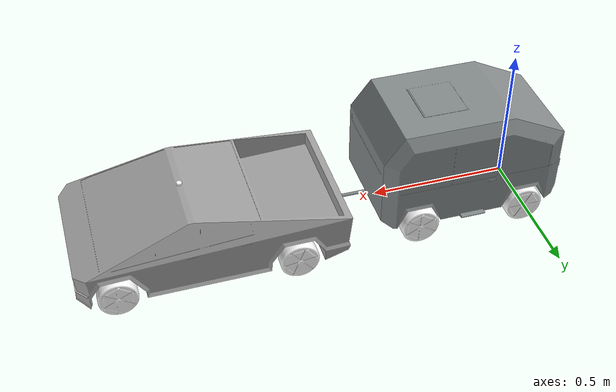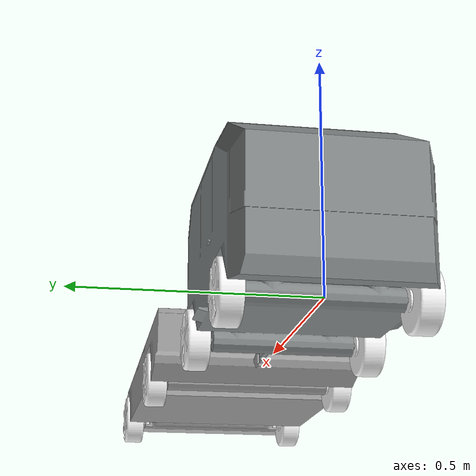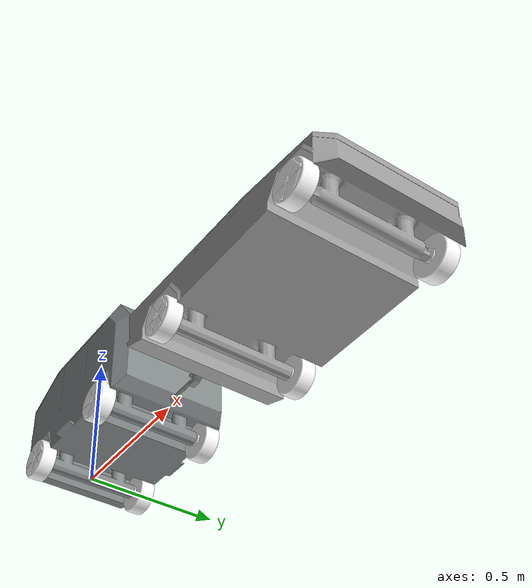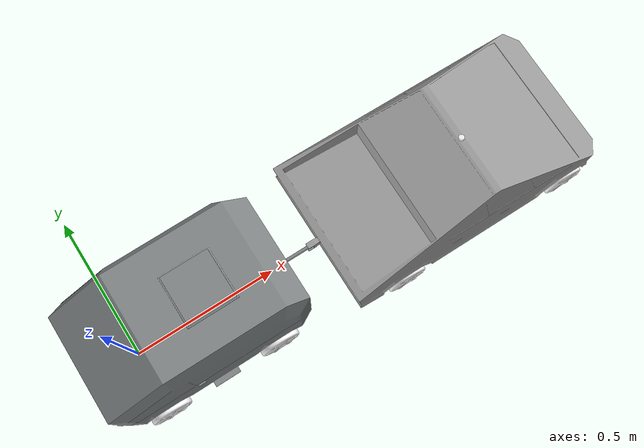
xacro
<?xml version="1.0"?>
<robot
  name="cyber_truck_trailer" xmlns:xacro="http://ros.org/wiki/xacro">
  <link
    name="trailer_base_link">
    <inertial>
      <origin
        xyz="0.208999667507989 -7.09811038529518E-07 0.193825536292477"
        rpy="0 0 0" />
      <mass
        value="71.153178542036" />
      <inertia
        ixx="16.9489177846989"
        ixy="-0.000204627218083857"
        ixz="-0.787115220796937"
        iyy="31.6626249749761"
        iyz="-0.000178248045006897"
        izz="33.8596103928731" />
    </inertial>
    <visual>
      <origin
        xyz="0 0 0"
        rpy="0 0 0" />
      <geometry>
        <mesh
          filename="package://cyber_truck_trailer/meshes/trailer_base_link.STL" />
      </geometry>
      <material
        name="">
        <color
          rgba="0.529411764705882 0.549019607843137 0.549019607843137 1" />
      </material>
    </visual>
    <collision>
      <origin
        xyz="0 0 0"
        rpy="0 0 0" />
      <geometry>
        <mesh
          filename="package://cyber_truck_trailer/meshes/trailer_base_link.STL" />
      </geometry>
    </collision>
  </link>
  <link
    name="trailer_rrw_link">
    <inertial>
      <origin
        xyz="3.83026943495679E-14 -1.91206432958546E-14 0.0153678361244729"
        rpy="0 0 0" />
      <mass
        value="0.72439498421396" />
      <inertia
        ixx="0.00100050040398938"
        ixy="-1.28274262656265E-20"
        ixz="1.01158453807695E-19"
        iyy="0.00100050040398938"
        iyz="-1.60071549886504E-20"
        izz="0.00166753377285241" />
    </inertial>
    <visual>
      <origin
        xyz="0 0 0"
        rpy="0 0 0" />
      <geometry>
        <mesh
          filename="package://cyber_truck_trailer/meshes/trailer_rrw_link.STL" />
      </geometry>
      <material
        name="">
        <color
          rgba="1 1 1 1" />
      </material>
    </visual>
    <collision>
      <origin
        xyz="0 0 0"
        rpy="0 0 0" />
      <geometry>
        <mesh
          filename="package://cyber_truck_trailer/meshes/trailer_rrw_link.STL" />
      </geometry>
    </collision>
  </link>
  <joint
    name="trailer_rrw_joint"
    type="continuous">
    <origin
      xyz="7.0283717805153E-05 -0.181945626461709 0.0021648066566907"
      rpy="1.5707963267949 0 0" />
    <parent
      link="trailer_base_link" />
    <child
      link="trailer_rrw_link" />
    <axis
      xyz="0 0 -1" />
  </joint>
  <link
    name="trailer_rlw_link">
    <inertial>
      <origin
        xyz="-2.22044604925031E-16 1.0796419257685E-17 -0.0153678361240795"
        rpy="0 0 0" />
      <mass
        value="0.724394984213959" />
      <inertia
        ixx="0.00100050040398938"
        ixy="1.41395509431171E-19"
        ixz="2.66450595702666E-18"
        iyy="0.00100050040398938"
        iyz="-6.73807415815898E-20"
        izz="0.00166753377285241" />
    </inertial>
    <visual>
      <origin
        xyz="0 0 0"
        rpy="0 0 0" />
      <geometry>
        <mesh
          filename="package://cyber_truck_trailer/meshes/trailer_rlw_link.STL" />
      </geometry>
      <material
        name="">
        <color
          rgba="1 1 1 1" />
      </material>
    </visual>
    <collision>
      <origin
        xyz="0 0 0"
        rpy="0 0 0" />
      <geometry>
        <mesh
          filename="package://cyber_truck_trailer/meshes/trailer_rlw_link.STL" />
      </geometry>
    </collision>
  </link>
  <joint
    name="trailer_rlw_joint"
    type="continuous">
    <origin
      xyz="7.02837178058191E-05 0.176946873708345 0.002164806656692"
      rpy="1.5707963267949 0 0" />
    <parent
      link="trailer_base_link" />
    <child
      link="trailer_rlw_link" />
    <axis
      xyz="0 0 1" />
  </joint>
  <link
    name="trailer_frw_link">
    <inertial>
      <origin
        xyz="5.21249710061511E-14 -1.22605549616972E-14 0.0153678361243607"
        rpy="0 0 0" />
      <mass
        value="0.72439498421396" />
      <inertia
        ixx="0.00100050040398938"
        ixy="-1.78658006835026E-20"
        ixz="7.02047940321961E-18"
        iyy="0.00100050040398938"
        iyz="-6.1944395331551E-21"
        izz="0.00166753377285241" />
    </inertial>
    <visual>
      <origin
        xyz="0 0 0"
        rpy="0 0 0" />
      <geometry>
        <mesh
          filename="package://cyber_truck_trailer/meshes/trailer_frw_link.STL" />
      </geometry>
      <material
        name="">
        <color
          rgba="1 1 1 1" />
      </material>
    </visual>
    <collision>
      <origin
        xyz="0 0 0"
        rpy="0 0 0" />
      <geometry>
        <mesh
          filename="package://cyber_truck_trailer/meshes/trailer_frw_link.STL" />
      </geometry>
    </collision>
  </link>
  <joint
    name="trailer_frw_joint"
    type="continuous">
    <origin
      xyz="0.400070283717805 -0.181945626461709 0.00216480665669068"
      rpy="1.5707963267949 0 0" />
    <parent
      link="trailer_base_link" />
    <child
      link="trailer_frw_link" />
    <axis
      xyz="0 0 -1" />
  </joint>
  <link
    name="trailer_flw_link">
    <inertial>
      <origin
        xyz="6.51700915454967E-14 5.62102488320266E-15 -0.0153678361241893"
        rpy="0 0 0" />
      <mass
        value="0.724394984213959" />
      <inertia
        ixx="0.00100050040398938"
        ixy="-2.72383397569604E-20"
        ixz="-1.33279120106074E-19"
        iyy="0.00100050040398938"
        iyz="-1.50405633240437E-19"
        izz="0.00166753377285241" />
    </inertial>
    <visual>
      <origin
        xyz="0 0 0"
        rpy="0 0 0" />
      <geometry>
        <mesh
          filename="package://cyber_truck_trailer/meshes/trailer_flw_link.STL" />
      </geometry>
      <material
        name="">
        <color
          rgba="1 1 1 1" />
      </material>
    </visual>
    <collision>
      <origin
        xyz="0 0 0"
        rpy="0 0 0" />
      <geometry>
        <mesh
          filename="package://cyber_truck_trailer/meshes/trailer_flw_link.STL" />
      </geometry>
    </collision>
  </link>
  <joint
    name="trailer_flw_joint"
    type="continuous">
    <origin
      xyz="0.400070283717805 0.181946873708344 0.00216480665669199"
      rpy="1.5707963267949 0 0" />
    <parent
      link="trailer_base_link" />
    <child
      link="trailer_flw_link" />
    <axis
      xyz="0 0 1" />
  </joint>
  <link
    name="chassis_link">
    <inertial>
      <origin
        xyz="0.524399240494415 3.75691026274771E-07 0.0414353314715627"
        rpy="0 0 0" />
      <mass
        value="66.7532065949751" />
      <inertia
        ixx="1.61272656728783"
        ixy="-1.06255935223018E-05"
        ixz="-0.048129997993702"
        iyy="3.41150984453349"
        iyz="2.28611408228852E-06"
        izz="4.58585783102967" />
    </inertial>
    <visual>
      <origin
        xyz="0 0 0"
        rpy="0 0 0" />
      <geometry>
        <mesh
          filename="package://cyber_truck_trailer/meshes/chassis_link.STL" />
      </geometry>
      <material
        name="">
        <color
          rgba="0.627450980392157 0.627450980392157 0.627450980392157 1" />
      </material>
    </visual>
    <collision>
      <origin
        xyz="0 0 0"
        rpy="0 0 0" />
      <geometry>
        <mesh
          filename="package://cyber_truck_trailer/meshes/chassis_link.STL" />
      </geometry>
    </collision>
  </link>
  <joint
    name="chassis_joint"
    type="revolute">
    <origin
      xyz="0.64699 0 0.038602"
      rpy="0 0 0" />
    <parent
      link="trailer_base_link" />
    <child
      link="chassis_link" />
    <axis
      xyz="0 0 -1" />
    <limit
      lower="-0.2816"
      upper="0.2816"
      effort="100"
      velocity="10" />
  </joint>
  <link
    name="lidar_link">
    <inertial>
      <origin
        xyz="-8.04504226575853E-05 7.67843247706512E-07 -0.00303642843235208"
        rpy="0 0 0" />
      <mass
        value="0.00336653694664888" />
      <inertia
        ixx="1.14502784125943E-07"
        ixy="-1.38986179022309E-11"
        ixz="6.71285350922427E-10"
        iyy="1.13038317422095E-07"
        iyz="-6.43255474969505E-12"
        izz="1.62599954732139E-07" />
    </inertial>
    <visual>
      <origin
        xyz="0 0 0"
        rpy="0 0 0" />
      <geometry>
        <mesh
          filename="package://cyber_truck_trailer/meshes/lidar_link.STL" />
      </geometry>
      <material
        name="">
        <color
          rgba="1 1 1 1" />
      </material>
    </visual>
    <collision>
      <origin
        xyz="0 0 0"
        rpy="0 0 0" />
      <geometry>
        <mesh
          filename="package://cyber_truck_trailer/meshes/lidar_link.STL" />
      </geometry>
    </collision>
  </link>
  <joint
    name="lidar_frame"
    type="fixed">
    <origin
      xyz="0.563552732203734 0 0.189816673326022"
      rpy="0 0 0" />
    <parent
      link="chassis_link" />
    <child
      link="lidar_link" />
    <axis
      xyz="0 0 0" />
  </joint>
  <link
    name="chassis_rrw_link">
    <inertial>
      <origin
        xyz="6.08704622696804E-17 1.0942863984541E-17 0.0153678361240778"
        rpy="0 0 0" />
      <mass
        value="0.72439498421396" />
      <inertia
        ixx="0.00100050040398938"
        ixy="5.58549374309073E-20"
        ixz="1.2957074726475E-19"
        iyy="0.00100050040398938"
        iyz="5.49547400107754E-19"
        izz="0.00166753377285241" />
    </inertial>
    <visual>
      <origin
        xyz="0 0 0"
        rpy="0 0 0" />
      <geometry>
        <mesh
          filename="package://cyber_truck_trailer/meshes/chassis_rrw_link.STL" />
      </geometry>
      <material
        name="">
        <color
          rgba="1 1 1 1" />
      </material>
    </visual>
    <collision>
      <origin
        xyz="0 0 0"
        rpy="0 0 0" />
      <geometry>
        <mesh
          filename="package://cyber_truck_trailer/meshes/chassis_rrw_link.STL" />
      </geometry>
    </collision>
  </link>
  <joint
    name="chassis_rrw_joint"
    type="continuous">
    <origin
      xyz="0.211046138035326 -0.225462509212952 -0.0364369904716932"
      rpy="1.5707963267949 0 0" />
    <parent
      link="chassis_link" />
    <child
      link="chassis_rrw_link" />
    <axis
      xyz="0 0 -1" />
  </joint>
  <link
    name="chassis_rlw_link">
    <inertial>
      <origin
        xyz="2.77752561127199E-16 3.27883774831003E-18 -0.0153678361240778"
        rpy="0 0 0" />
      <mass
        value="0.724394984213959" />
      <inertia
        ixx="0.00100050040398938"
        ixy="1.21598063017249E-19"
        ixz="1.95851231747906E-19"
        iyy="0.00100050040398938"
        iyz="4.53437782326283E-19"
        izz="0.00166753377285241" />
    </inertial>
    <visual>
      <origin
        xyz="0 0 0"
        rpy="0 0 0" />
      <geometry>
        <mesh
          filename="package://cyber_truck_trailer/meshes/chassis_rlw_link.STL" />
      </geometry>
      <material
        name="">
        <color
          rgba="1 1 1 1" />
      </material>
    </visual>
    <collision>
      <origin
        xyz="0 0 0"
        rpy="0 0 0" />
      <geometry>
        <mesh
          filename="package://cyber_truck_trailer/meshes/chassis_rlw_link.STL" />
      </geometry>
    </collision>
  </link>
  <joint
    name="chassis_rlw_joint"
    type="continuous">
    <origin
      xyz="0.211046138035326 0.225462516782742 -0.036436990471692"
      rpy="1.5707963267949 0 0" />
    <parent
      link="chassis_link" />
    <child
      link="chassis_rlw_link" />
    <axis
      xyz="0 0 1" />
  </joint>
  <link
    name="chassis_fra_link">
    <inertial>
      <origin
        xyz="2.66700217466109E-09 -0.00972237828907267 0.0159005866069173"
        rpy="0 0 0" />
      <mass
        value="0.0549845947133073" />
      <inertia
        ixx="8.45119935272113E-06"
        ixy="-1.25374857911798E-11"
        ixz="-4.01915329504993E-11"
        iyy="2.86081527035349E-06"
        iyz="3.24289946483862E-10"
        izz="7.04682890144697E-06" />
    </inertial>
    <visual>
      <origin
        xyz="0 0 0"
        rpy="0 0 0" />
      <geometry>
        <mesh
          filename="package://cyber_truck_trailer/meshes/chassis_fra_link.STL" />
      </geometry>
      <material
        name="">
        <color
          rgba="0.898039215686275 0.898039215686275 0.898039215686275 1" />
      </material>
    </visual>
    <collision>
      <origin
        xyz="0 0 0"
        rpy="0 0 0" />
      <geometry>
        <mesh
          filename="package://cyber_truck_trailer/meshes/chassis_fra_link.STL" />
      </geometry>
    </collision>
  </link>
  <joint
    name="chassis_fra_joint"
    type="revolute">
    <origin
      xyz="0.83569 -0.19846 -0.052336"
      rpy="0 0 0" />
    <parent
      link="chassis_link" />
    <child
      link="chassis_fra_link" />
    <axis
      xyz="0 0 1" />
    <limit
      lower="-0.2816"
      upper="0.2816"
      effort="100"
      velocity="10" />
  </joint>
  <link
    name="chassis_frw_link">
    <inertial>
      <origin
        xyz="-1.11022302462516E-16 -2.54995033606171E-16 0.0153678361240784"
        rpy="0 0 0" />
      <mass
        value="0.72439498421396" />
      <inertia
        ixx="0.00100050040398938"
        ixy="-7.48854848038652E-20"
        ixz="-5.33610562376912E-18"
        iyy="0.00100050040398938"
        iyz="1.0603953265148E-18"
        izz="0.00166753377285241" />
    </inertial>
    <visual>
      <origin
        xyz="0 0 0"
        rpy="0 0 0" />
      <geometry>
        <mesh
          filename="package://cyber_truck_trailer/meshes/chassis_frw_link.STL" />
      </geometry>
      <material
        name="">
        <color
          rgba="1 1 1 1" />
      </material>
    </visual>
    <collision>
      <origin
        xyz="0 0 0"
        rpy="0 0 0" />
      <geometry>
        <mesh
          filename="package://cyber_truck_trailer/meshes/chassis_frw_link.STL" />
      </geometry>
    </collision>
  </link>
  <joint
    name="chassis_frw_joint"
    type="continuous">
    <origin
      xyz="0 -0.0275000000000001 0.015901193015152"
      rpy="1.5707963267949 0 0" />
    <parent
      link="chassis_fra_link" />
    <child
      link="chassis_frw_link" />
    <axis
      xyz="0 0 -1" />
  </joint>
  <link
    name="chassis_fla_link">
    <inertial>
      <origin
        xyz="2.66703281681657E-09 0.00972237828901668 0.0158994133929911"
        rpy="0 0 0" />
      <mass
        value="0.0549845947133072" />
      <inertia
        ixx="8.45119935272112E-06"
        ixy="1.25374857815876E-11"
        ixz="4.01915329625832E-11"
        iyy="2.86081527035348E-06"
        iyz="3.24289946558189E-10"
        izz="7.04682890144697E-06" />
    </inertial>
    <visual>
      <origin
        xyz="0 0 0"
        rpy="0 0 0" />
      <geometry>
        <mesh
          filename="package://cyber_truck_trailer/meshes/chassis_fla_link.STL" />
      </geometry>
      <material
        name="">
        <color
          rgba="0.898039215686275 0.898039215686275 0.898039215686275 1" />
      </material>
    </visual>
    <collision>
      <origin
        xyz="0 0 0"
        rpy="0 0 0" />
      <geometry>
        <mesh
          filename="package://cyber_truck_trailer/meshes/chassis_fla_link.STL" />
      </geometry>
    </collision>
  </link>
  <joint
    name="chassis_fla_joint"
    type="revolute">
    <origin
      xyz="0.83569 0.19855 -0.052336"
      rpy="0 0 0" />
    <parent
      link="chassis_link" />
    <child
      link="chassis_fla_link" />
    <axis
      xyz="0 0 -1" />
    <limit
      lower="-0.2816"
      upper="0.2816"
      effort="100"
      velocity="10" />
  </joint>
  <link
    name="chassis_flw_link">
    <inertial>
      <origin
        xyz="3.44169137633799E-15 1.4888913245097E-14 -0.0153678361240687"
        rpy="0 0 0" />
      <mass
        value="0.724394984213959" />
      <inertia
        ixx="0.00100050040398938"
        ixy="-4.98378304296678E-22"
        ixz="3.57769771308648E-18"
        iyy="0.00100050040398938"
        iyz="4.16927976191023E-19"
        izz="0.00166753377285241" />
    </inertial>
    <visual>
      <origin
        xyz="0 0 0"
        rpy="0 0 0" />
      <geometry>
        <mesh
          filename="package://cyber_truck_trailer/meshes/chassis_flw_link.STL" />
      </geometry>
      <material
        name="">
        <color
          rgba="1 1 1 1" />
      </material>
    </visual>
    <collision>
      <origin
        xyz="0 0 0"
        rpy="0 0 0" />
      <geometry>
        <mesh
          filename="package://cyber_truck_trailer/meshes/chassis_flw_link.STL" />
      </geometry>
    </collision>
  </link>
  <joint
    name="chassis_flw_joint"
    type="continuous">
    <origin
      xyz="0 0.0275000000000002 0.0158988069848475"
      rpy="1.5707963267949 0 0" />
    <parent
      link="chassis_fla_link" />
    <child
      link="chassis_flw_link" />
    <axis
      xyz="0 0 1" />
  </joint>

  <gazebo>
    <plugin name="car_gazebo_plugin" filename="libcar_gazebo_plugin.so">
    </plugin>
  </gazebo>

  <gazebo reference="lidar_link">
    <sensor name="lidar" type="ray">
      <pose>0.0 0.0 0.0 0 0 0</pose>
      <always_on>true</always_on>
      <visualize>true</visualize>
      <update_rate>5</update_rate>
      <ray>
        <scan>
          <horizontal>
            <samples>360</samples>
            <resolution>1.00000</resolution>
            <min_angle>0.000000</min_angle>
            <max_angle>6.280000</max_angle>
          </horizontal>
        </scan>
        <range>
          <min>0.120000</min>
          <max>3.5</max>
          <resolution>0.015000</resolution>
        </range>
        <noise>
          <type>gaussian</type>
          <mean>0.0</mean>
          <stddev>0.01</stddev>
        </noise>
      </ray>
      <plugin name="scan" filename="libgazebo_ros_ray_sensor.so">
        <ros>
          <remapping>~/out:=scan</remapping>
        </ros>
        <output_type>sensor_msgs/LaserScan</output_type>
        <frame_name>lidar_link</frame_name>
      </plugin>
    </sensor>
  </gazebo>
</robot>
